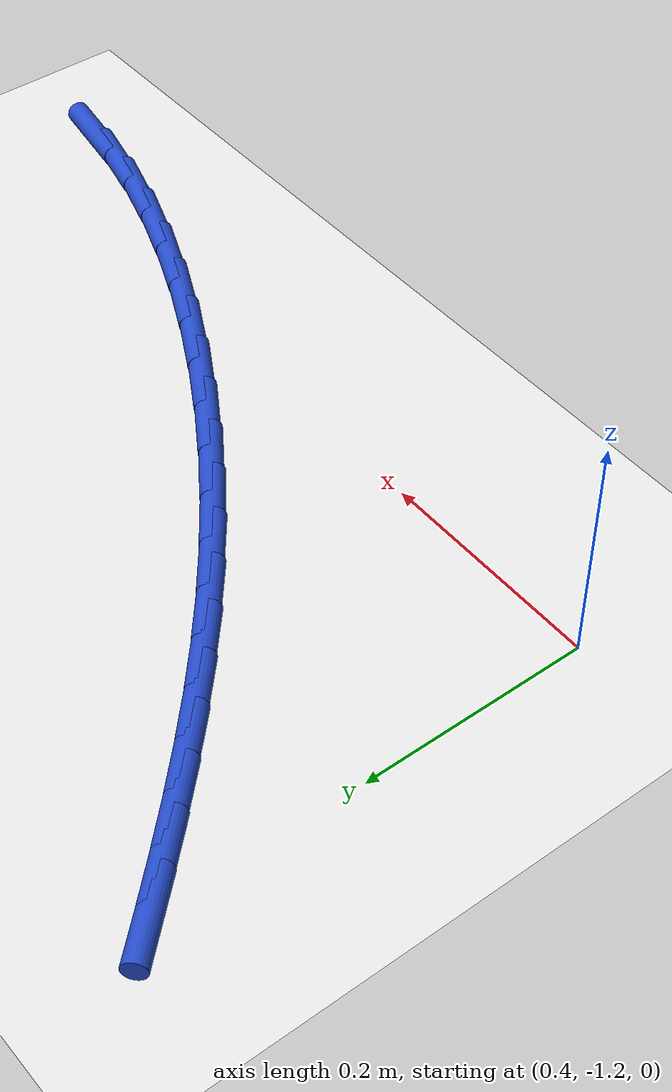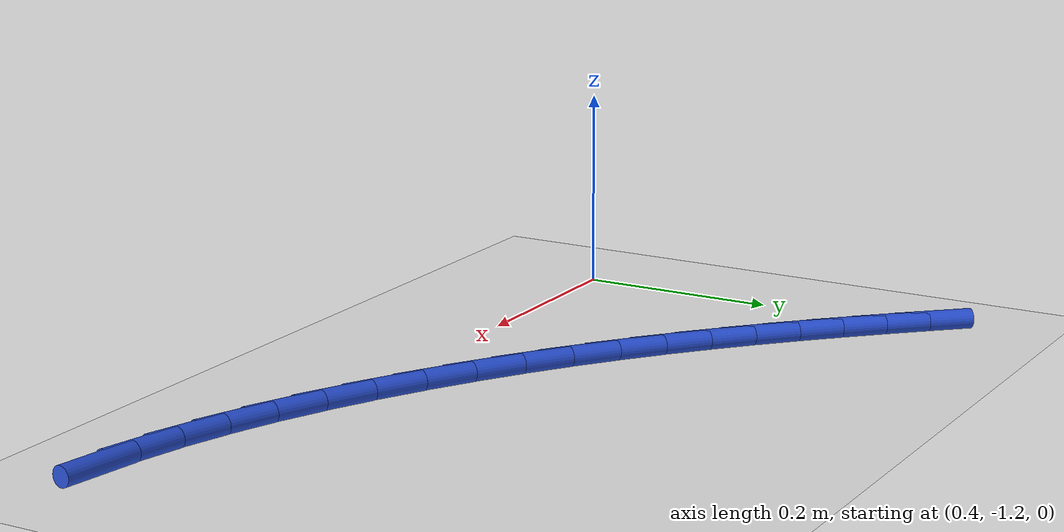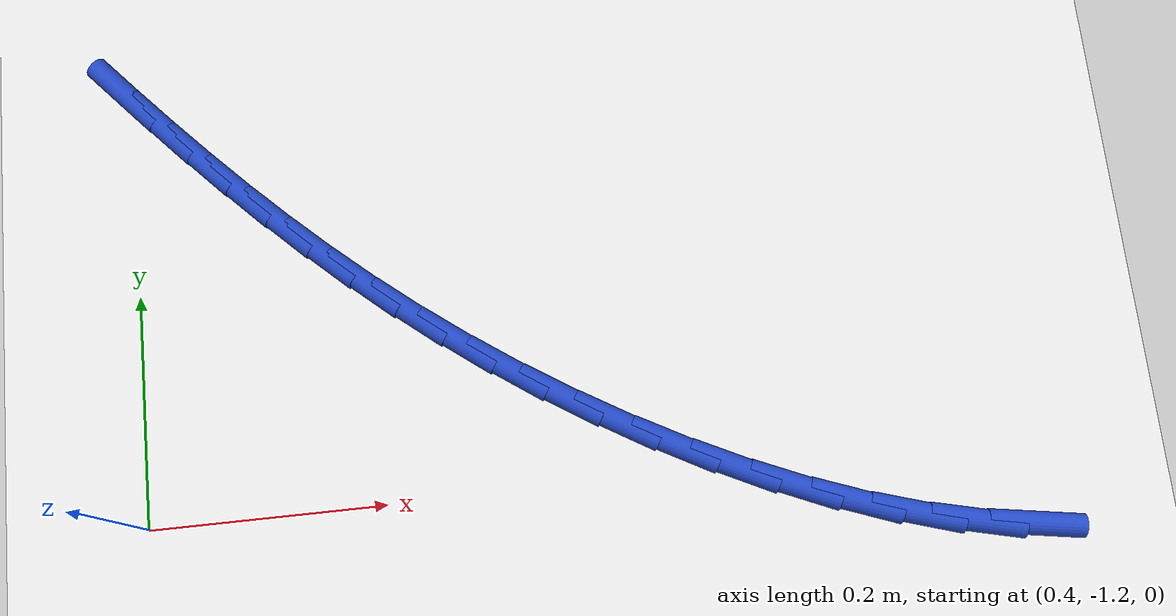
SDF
<sdf version="1.6">
 <world name="default">
  <model name="ground_plane">
   <static>1</static>
   <link name="link">
    <collision name="collision">
     <geometry><plane><normal>0 0 1</normal><size>100 100</size></plane></geometry>
     <surface><friction><ode><mu>100</mu><mu2>50</mu2></ode></friction></surface>
    </collision>
    <visual name="visual">
     <cast_shadows>0</cast_shadows>
     <geometry><plane><normal>0 0 1</normal><size>100 100</size></plane></geometry>
     <material>
      <script><uri>file://media/materials/scripts/gazebo.material</uri><name>Gazebo/WhiteGlow</name></script>
     </material>
    </visual>
   </link>
  </model>
  <model name="line">
   <link name="link_112">
    <pose>1.1333935761996259 -1.2708004689312924 0.01 0 1.57 -0.15589765490167287</pose>
    <collision name="collision">
     <geometry><cylinder><radius>0.01</radius><length>0.08</length></cylinder></geometry>
    </collision>
    <visual name="visual">
     <material>
      <script><name>Gazebo/Blue</name><uri>file://media/materials/scripts/gazebo.material</uri></script>
     </material>
     <geometry><cylinder><radius>0.01</radius><length>0.08</length></cylinder></geometry>
    </visual>
   </link>
   <link name="link_113">
    <pose>1.0854577767655755 -1.2632662537001496 0.01 0 1.57 -0.23158062776703686</pose>
    <collision name="collision">
     <geometry><cylinder><radius>0.01</radius><length>0.08</length></cylinder></geometry>
    </collision>
    <visual name="visual">
     <material>
      <script><name>Gazebo/Blue</name><uri>file://media/materials/scripts/gazebo.material</uri></script>
     </material>
     <geometry><cylinder><radius>0.01</radius><length>0.08</length></cylinder></geometry>
    </visual>
   </link>
   <link name="link_114">
    <pose>1.0369149006480327 -1.2518192967381008 0.01 0 1.57 -0.2974375668837039</pose>
    <collision name="collision">
     <geometry><cylinder><radius>0.01</radius><length>0.08</length></cylinder></geometry>
    </collision>
    <visual name="visual">
     <material>
      <script><name>Gazebo/Blue</name><uri>file://media/materials/scripts/gazebo.material</uri></script>
     </material>
     <geometry><cylinder><radius>0.01</radius><length>0.08</length></cylinder></geometry>
    </visual>
   </link>
   <link name="link_115">
    <pose>0.9881269150843113 -1.2368642746571117 0.01 0 1.57 -0.35528490230422777</pose>
    <collision name="collision">
     <geometry><cylinder><radius>0.01</radius><length>0.08</length></cylinder></geometry>
    </collision>
    <visual name="visual">
     <material>
      <script><name>Gazebo/Blue</name><uri>file://media/materials/scripts/gazebo.material</uri></script>
     </material>
     <geometry><cylinder><radius>0.01</radius><length>0.08</length></cylinder></geometry>
    </visual>
   </link>
   <link name="link_116">
    <pose>0.9394557873117259 -1.2188058640691495 0.01 0 1.57 -0.4067008871973643</pose>
    <collision name="collision">
     <geometry><cylinder><radius>0.01</radius><length>0.08</length></cylinder></geometry>
    </collision>
    <visual name="visual">
     <material>
      <script><name>Gazebo/Blue</name><uri>file://media/materials/scripts/gazebo.material</uri></script>
     </material>
     <geometry><cylinder><radius>0.01</radius><length>0.08</length></cylinder></geometry>
    </visual>
   </link>
   <link name="link_117">
    <pose>0.891263484567593 -1.1980487415861816 0.01 0 1.57 -0.4530395091311942</pose>
    <collision name="collision">
     <geometry><cylinder><radius>0.01</radius><length>0.08</length></cylinder></geometry>
    </collision>
    <visual name="visual">
     <material>
      <script><name>Gazebo/Blue</name><uri>file://media/materials/scripts/gazebo.material</uri></script>
     </material>
     <geometry><cylinder><radius>0.01</radius><length>0.08</length></cylinder></geometry>
    </visual>
   </link>
   <link name="link_118">
    <pose>0.8439119740892257 -1.1749975838201736 0.01 0 1.57 -0.4954719426205891</pose>
    <collision name="collision">
     <geometry><cylinder><radius>0.01</radius><length>0.08</length></cylinder></geometry>
    </collision>
    <visual name="visual">
     <material>
      <script><name>Gazebo/Blue</name><uri>file://media/materials/scripts/gazebo.material</uri></script>
     </material>
     <geometry><cylinder><radius>0.01</radius><length>0.08</length></cylinder></geometry>
    </visual>
   </link>
   <link name="link_119">
    <pose>0.7977632231139409 -1.1500570673830937 0.01 0 1.57 -0.5350386677817445</pose>
    <collision name="collision">
     <geometry><cylinder><radius>0.01</radius><length>0.08</length></cylinder></geometry>
    </collision>
    <visual name="visual">
     <material>
      <script><name>Gazebo/Blue</name><uri>file://media/materials/scripts/gazebo.material</uri></script>
     </material>
     <geometry><cylinder><radius>0.01</radius><length>0.08</length></cylinder></geometry>
    </visual>
   </link>
   <link name="link_120">
    <pose>0.7531791988790512 -1.1236318688869065 0.01 0 1.57 -0.5727075674643456</pose>
    <collision name="collision">
     <geometry><cylinder><radius>0.01</radius><length>0.08</length></cylinder></geometry>
    </collision>
    <visual name="visual">
     <material>
      <script><name>Gazebo/Blue</name><uri>file://media/materials/scripts/gazebo.material</uri></script>
     </material>
     <geometry><cylinder><radius>0.01</radius><length>0.08</length></cylinder></geometry>
    </visual>
   </link>
   <link name="link_121">
    <pose>0.7105189923696017 -1.0961247747031606 0.01 0 1.57 -0.6092932174536363</pose>
    <collision name="collision">
     <geometry><cylinder><radius>0.01</radius><length>0.08</length></cylinder></geometry>
    </collision>
    <visual name="visual">
     <material>
      <script><name>Gazebo/Blue</name><uri>file://media/materials/scripts/gazebo.material</uri></script>
     </material>
     <geometry><cylinder><radius>0.01</radius><length>0.08</length></cylinder></geometry>
    </visual>
   </link>
   <link name="link_122">
    <pose>0.6699399695141598 -1.0678059997808045 0.01 0 1.57 -0.6447278622443515</pose>
    <collision name="collision">
     <geometry><cylinder><radius>0.01</radius><length>0.08</length></cylinder></geometry>
    </collision>
    <visual name="visual">
     <material>
      <script><name>Gazebo/Blue</name><uri>file://media/materials/scripts/gazebo.material</uri></script>
     </material>
     <geometry><cylinder><radius>0.01</radius><length>0.08</length></cylinder></geometry>
    </visual>
   </link>
   <link name="link_123">
    <pose>0.6312687987775815 -1.0387284284407519 0.01 0 1.57 -0.6785196354388114</pose>
    <collision name="collision">
     <geometry><cylinder><radius>0.01</radius><length>0.08</length></cylinder></geometry>
    </collision>
    <visual name="visual">
     <material>
      <script><name>Gazebo/Blue</name><uri>file://media/materials/scripts/gazebo.material</uri></script>
     </material>
     <geometry><cylinder><radius>0.01</radius><length>0.08</length></cylinder></geometry>
    </visual>
   </link>
   <link name="link_124">
    <pose>0.5943014854382442 -1.008924793505022 0.01 0 1.57 -0.7101892849098609</pose>
    <collision name="collision">
     <geometry><cylinder><radius>0.01</radius><length>0.08</length></cylinder></geometry>
    </collision>
    <visual name="visual">
     <material>
      <script><name>Gazebo/Blue</name><uri>file://media/materials/scripts/gazebo.material</uri></script>
     </material>
     <geometry><cylinder><radius>0.01</radius><length>0.08</length></cylinder></geometry>
    </visual>
   </link>
   <link name="link_125">
    <pose>0.5588340347745248 -0.9784278277956321 0.01 0 1.57 -0.7392949541113983</pose>
    <collision name="collision">
     <geometry><cylinder><radius>0.01</radius><length>0.08</length></cylinder></geometry>
    </collision>
    <visual name="visual">
     <material>
      <script><name>Gazebo/Blue</name><uri>file://media/materials/scripts/gazebo.material</uri></script>
     </material>
     <geometry><cylinder><radius>0.01</radius><length>0.08</length></cylinder></geometry>
    </visual>
   </link>
   <link name="link_126">
    <pose>0.5246624520647981 -0.9472702641345994 0.01 0 1.57 -0.7654474010220091</pose>
    <collision name="collision">
     <geometry><cylinder><radius>0.01</radius><length>0.08</length></cylinder></geometry>
    </collision>
    <visual name="visual">
     <material>
      <script><name>Gazebo/Blue</name><uri>file://media/materials/scripts/gazebo.material</uri></script>
     </material>
     <geometry><cylinder><radius>0.01</radius><length>0.08</length></cylinder></geometry>
    </visual>
   </link>
   <link name="link_127">
    <pose>0.49158274258744195 -0.915484835343942 0.01 0 1.57 -0.7883209232365724</pose>
    <collision name="collision">
     <geometry><cylinder><radius>0.01</radius><length>0.08</length></cylinder></geometry>
    </collision>
    <visual name="visual">
     <material>
      <script><name>Gazebo/Blue</name><uri>file://media/materials/scripts/gazebo.material</uri></script>
     </material>
     <geometry><cylinder><radius>0.01</radius><length>0.08</length></cylinder></geometry>
    </visual>
   </link>
   <link name="link_128">
    <pose>0.45939091162083134 -0.8831042742456771 0.01 0 1.57 -0.807659701606848</pose>
    <collision name="collision">
     <geometry><cylinder><radius>0.01</radius><length>0.08</length></cylinder></geometry>
    </collision>
    <visual name="visual">
     <material>
      <script><name>Gazebo/Blue</name><uri>file://media/materials/scripts/gazebo.material</uri></script>
     </material>
     <geometry><cylinder><radius>0.01</radius><length>0.08</length></cylinder></geometry>
    </visual>
   </link>
   <link name="link_129">
    <pose>0.42788296444334345 -0.8501613136618228 0.01 0 1.57 -0.8232799265184401</pose>
    <collision name="collision">
     <geometry><cylinder><radius>0.01</radius><length>0.08</length></cylinder></geometry>
    </collision>
    <visual name="visual">
     <material>
      <script><name>Gazebo/Blue</name><uri>file://media/materials/scripts/gazebo.material</uri></script>
     </material>
     <geometry><cylinder><radius>0.01</radius><length>0.08</length></cylinder></geometry>
    </visual>
   </link>
   <link name="link_130">
    <pose>0.39685490633335485 -0.8166886864143971 0.01 0 1.57 -0.835068517043517</pose>
    <collision name="collision">
     <geometry><cylinder><radius>0.01</radius><length>0.08</length></cylinder></geometry>
    </collision>
    <visual name="visual">
     <material>
      <script><name>Gazebo/Blue</name><uri>file://media/materials/scripts/gazebo.material</uri></script>
     </material>
     <geometry><cylinder><radius>0.01</radius><length>0.08</length></cylinder></geometry>
    </visual>
   </link>
  </model>
 </world>
</sdf>
